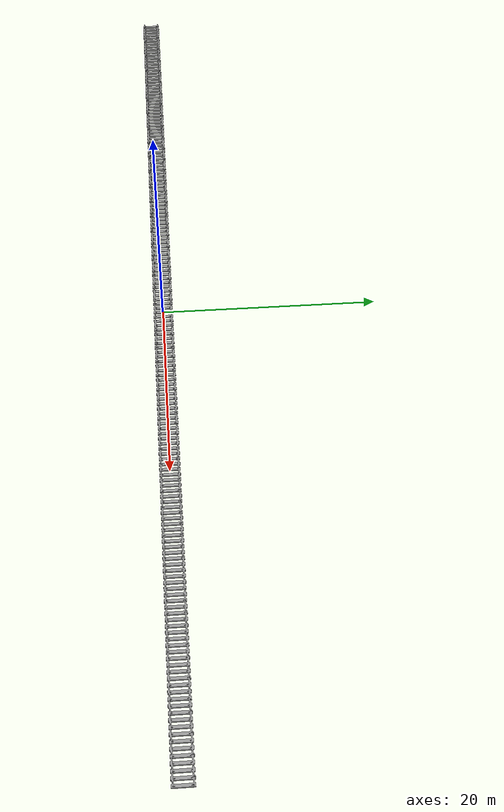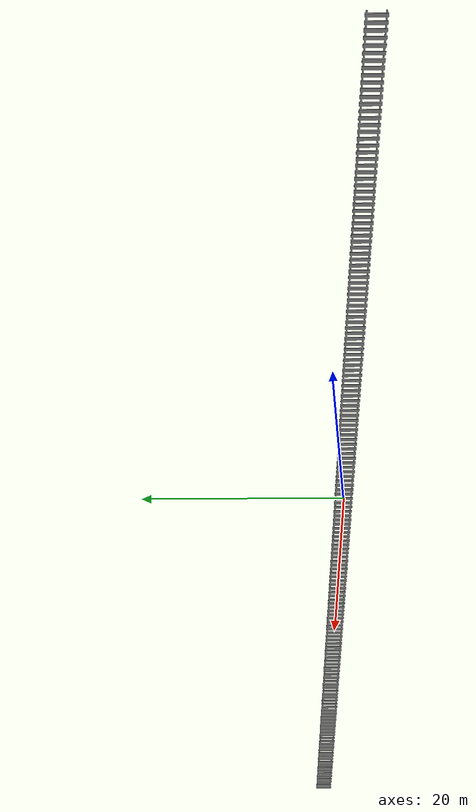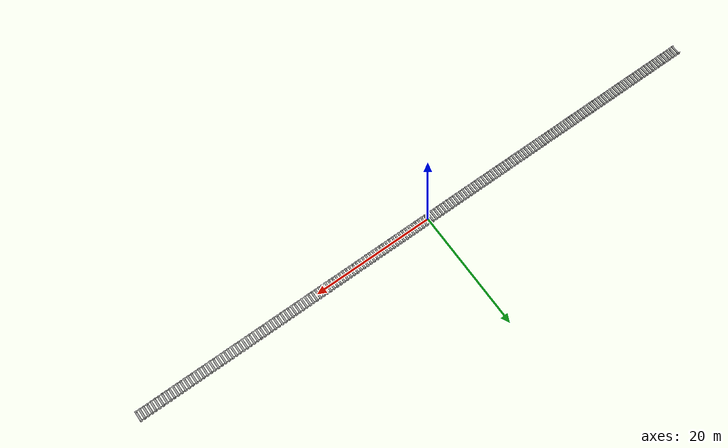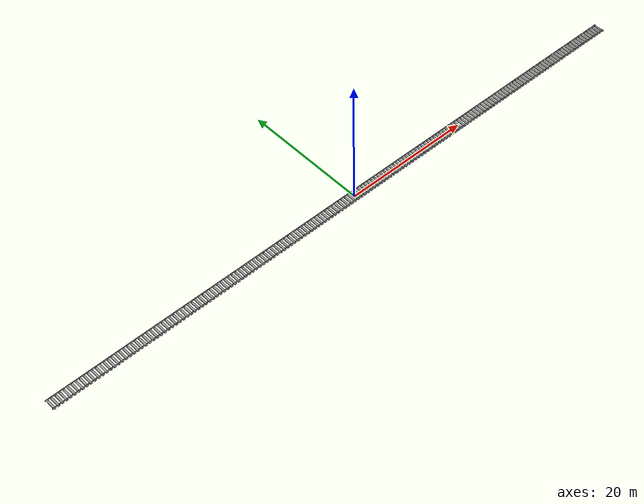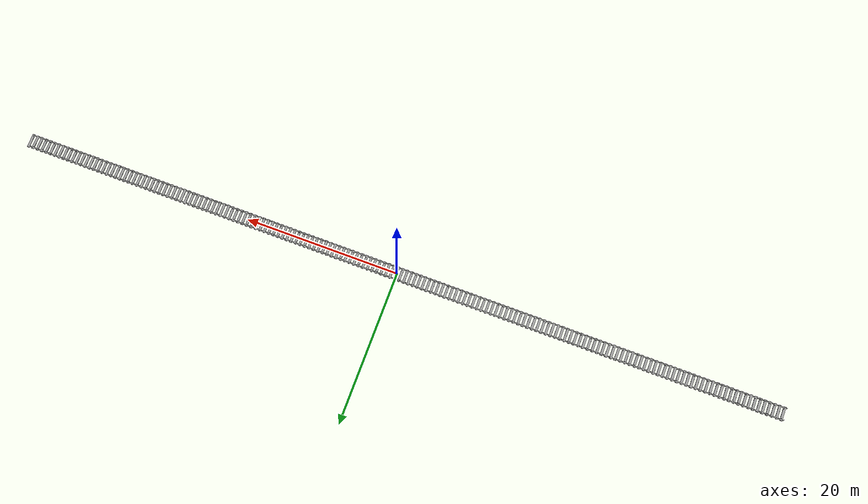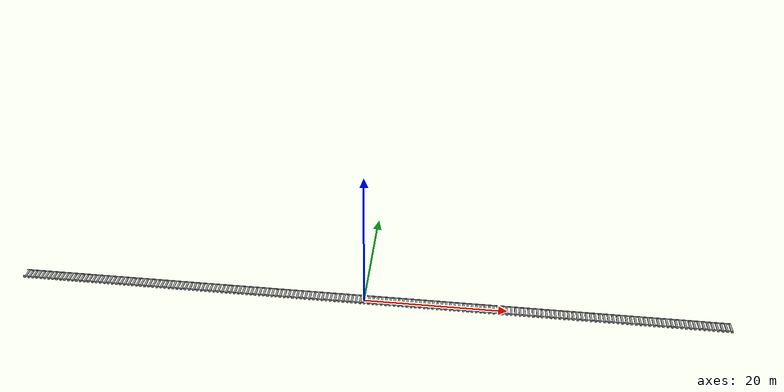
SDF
<?xml version='1.0'?>
<sdf version='1.7'>
  <model name='tracks_real'>
    <link name='link'>
      <inertial>
        <mass>1</mass>
        <inertia>
          <ixx>0.166667</ixx>
          <ixy>0</ixy>
          <ixz>0</ixz>
          <iyy>0.166667</iyy>
          <iyz>0</iyz>
          <izz>0.166667</izz>
        </inertia>
        <pose>0 0 0 0 -0 0</pose>
      </inertial>
      <self_collide>0</self_collide>
      <enable_wind>0</enable_wind>
      <kinematic>0</kinematic>
      <pose>0 0 0 0 -0 0</pose>
      <gravity>1</gravity>
      <visual name='visual'>
        <pose>0 0 0.15 0 -0 0</pose>
        <geometry>
          <mesh>
            <uri>/home/andre/argo_project/argo3_ws/src/argo3_gazebo_simulation/argo3_description/meshes/tracks/tracks_new.stl</uri>
          </mesh>
        </geometry>
        <material>
          <lighting>1</lighting>
          <script>
            <uri>file://media/materials/scripts/gazebo.material</uri>
            <name>Gazebo/Grey</name>
          </script>
          <shader type='pixel'>
            <normal_map>__default__</normal_map>
          </shader>
          <ambient>0.3 0.3 0.3 1</ambient>
          <diffuse>0.7 0.7 0.7 1</diffuse>
          <specular>0.01 0.01 0.01 1</specular>
          <emissive>0 0 0 1</emissive>
        </material>
        <transparency>0</transparency>
        <cast_shadows>1</cast_shadows>
      </visual>
    </link>
    <static>1</static>
    <allow_auto_disable>1</allow_auto_disable>
  </model>
</sdf>
